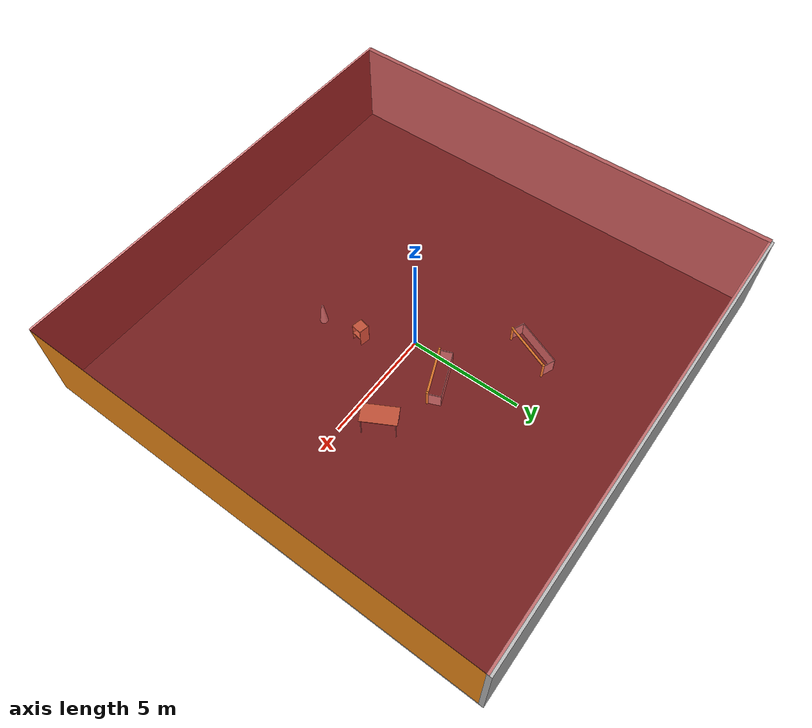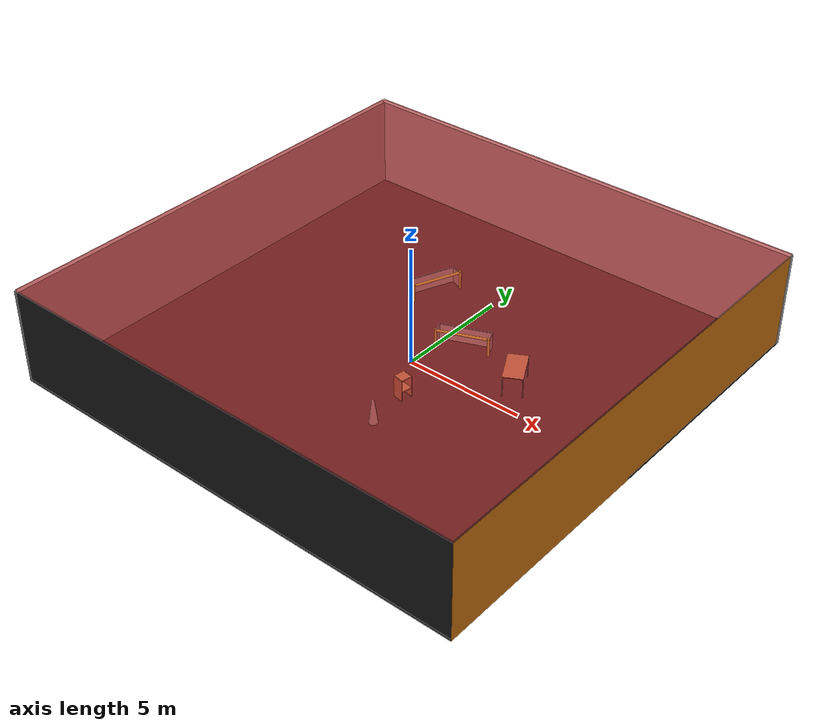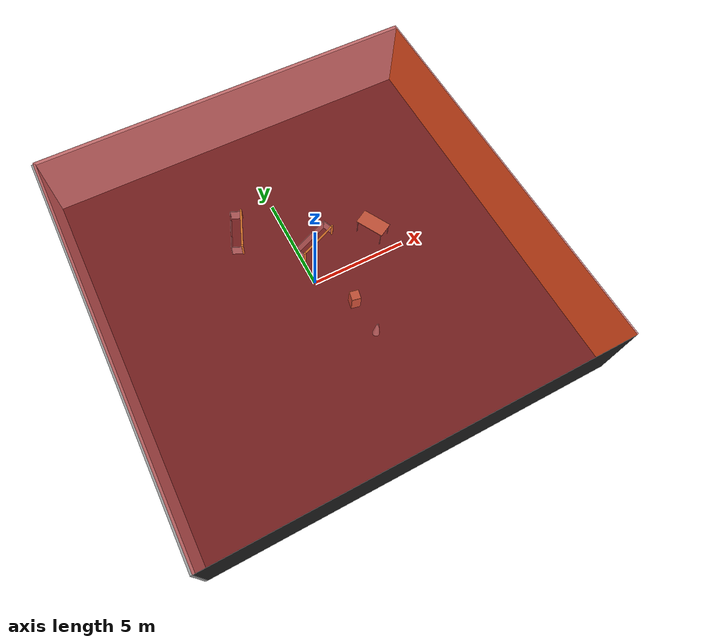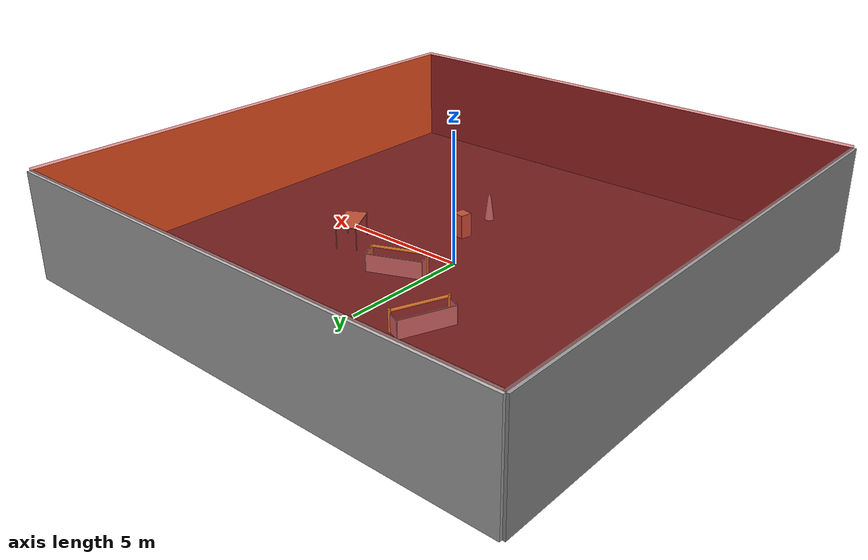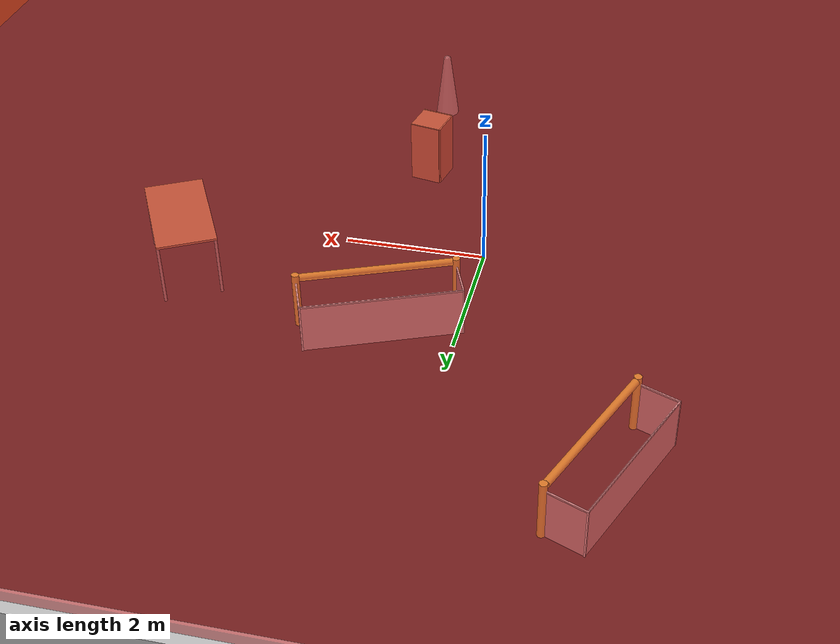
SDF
<sdf version="1.4">
 <world name="default">
  <physics type="ode">
   <max_step_size>0.001</max_step_size>
   <real_time_factor>1</real_time_factor>
   <real_time_update_rate>1000</real_time_update_rate>
   <gravity>0 0 -9.8</gravity>
  </physics>
  <scene><ambient>0.4 0.4 0.4 1</ambient><background>0.7 0.7 0.7 1</background><shadows>1</shadows></scene>
  <model name="Surrounding">
   <static>1</static>
   <link name="Ceiling">
    <collision name="Ceiling_Collision"><geometry><box><size>20 20 0.1</size></box></geometry></collision>
    <visual name="Ceiling_Visual">
     <geometry><box><size>20 20 0.1</size></box></geometry>
     <material>
      <script><uri>file://media/materials/scripts/gazebo.material</uri><name>Gazebo/RedTransparent</name></script>
     </material>
    </visual>
    <pose>0 0 4.05 0 0 0</pose>
   </link>
   <link name="Wall_South">
    <collision name="Wall_South_Collision">
     <geometry><box><size>20 0 4</size></box></geometry>
     <pose>0 0 2 0 -0 0</pose>
    </collision>
    <visual name="Wall_South_Visual">
     <pose>0 0 2 0 -0 0</pose>
     <geometry><box><size>20 0 4</size></box></geometry>
     <material>
      <script><uri>file://media/materials/scripts/gazebo.material</uri><name>Gazebo/FlatBlack</name></script>
     </material>
    </visual>
    <velocity_decay><linear>0</linear><angular>0</angular></velocity_decay>
    <pose>0 -10 0 0 -0 0</pose>
   </link>
   <link name="Wall_East">
    <collision name="Wall_21_Collision">
     <geometry><box><size>20 0 4</size></box></geometry>
     <pose>0 0 2 0 -0 0</pose>
    </collision>
    <visual name="Wall_21_Visual">
     <pose>0 0 2 0 -0 0</pose>
     <geometry><box><size>20 0 4</size></box></geometry>
     <material>
      <script><uri>file://media/materials/scripts/gazebo.material</uri><name>Gazebo/Orange</name></script>
     </material>
    </visual>
    <velocity_decay><linear>0</linear><angular>0</angular></velocity_decay>
    <pose>10 0 0 0 -0 1.5708</pose>
   </link>
   <link name="Wall_North">
    <collision name="Wall_22_Collision">
     <geometry><box><size>20 0.2 4</size></box></geometry>
     <pose>0 0 2 0 -0 0</pose>
    </collision>
    <visual name="Wall_22_Visual">
     <pose>0 0 2 0 -0 0</pose>
     <geometry><box><size>20 0.2 4</size></box></geometry>
     <material>
      <script><uri>file://media/materials/scripts/gazebo.material</uri><name>Gazebo/LightOn</name></script>
     </material>
    </visual>
    <velocity_decay><linear>0</linear><angular>0</angular></velocity_decay>
    <pose>0 10 0 0 -0 0</pose>
   </link>
   <link name="Wall_West">
    <collision name="Wall_23_Collision">
     <geometry><box><size>20 0.2 4</size></box></geometry>
     <pose>0 0 2 0 -0 0</pose>
    </collision>
    <visual name="Wall_23_Visual">
     <pose>0 0 2 0 -0 0</pose>
     <geometry><box><size>20 0.2 4</size></box></geometry>
     <material>
      <script><uri>file://media/materials/scripts/gazebo.material</uri><name>Gazebo/Grey</name></script>
     </material>
    </visual>
    <velocity_decay><linear>0</linear><angular>0</angular></velocity_decay>
    <pose>-10 0 0 0 0 -1.5708</pose>
   </link>
   <link name="Ground_link">
    <collision name="collision">
     <pose>0 0 .05 0 -0 0</pose>
     <geometry><box><size>20 20 0.1</size></box></geometry>
    </collision>
    <visual name="visual">
     <pose>0 0 .05 0 -0 0</pose>
     <geometry><box><size>20 20 0.1</size></box></geometry>
     <material>
      <script><uri>file://media/materials/scripts/gazebo.material</uri><name>Gazebo/FlatBlack</name></script>
     </material>
    </visual>
   </link>
   <static>1</static>
  </model>
  <spherical_coordinates>
   <surface_model>EARTH_WGS84</surface_model>
   <latitude_deg>0</latitude_deg>
   <longitude_deg>0</longitude_deg>
   <elevation>0</elevation>
   <heading_deg>0</heading_deg>
  </spherical_coordinates>
  <light name="lightball_0" type="diffuse">
   <diffuse>0.8 0.8 0.8 1</diffuse>
   <specular>0.2 0.2 0.2 1</specular>
   <attenuation>
    <range>100</range>
    <constant>0.7</constant>
    <linear>0.01</linear>
    <quadratic>0.001</quadratic>
   </attenuation>
   <direction>-0.5 0.1 -0.9</direction>
   <pose>-4.99779504625 7.48784262739 1.88570936649 0 0 0</pose>
  </light>
  <light name="lightball_1" type="diffuse">
   <diffuse>0.8 0.8 0.8 1</diffuse>
   <specular>0.2 0.2 0.2 1</specular>
   <attenuation>
    <range>100</range>
    <constant>0.7</constant>
    <linear>0.01</linear>
    <quadratic>0.001</quadratic>
   </attenuation>
   <direction>-0.5 0.1 -0.9</direction>
   <pose>6.17389298153 3.52630313546 2.01788551384 0 0 0</pose>
  </light>
  <light name="lightball_2" type="diffuse">
   <diffuse>0.8 0.8 0.8 1</diffuse>
   <specular>0.2 0.2 0.2 1</specular>
   <attenuation>
    <range>100</range>
    <constant>0.7</constant>
    <linear>0.01</linear>
    <quadratic>0.001</quadratic>
   </attenuation>
   <direction>-0.5 0.1 -0.9</direction>
   <pose>-9.89718216354 -6.40172477364 2.10930574053 0 0 0</pose>
  </light>
  <light name="lightball_3" type="diffuse">
   <diffuse>0.8 0.8 0.8 1</diffuse>
   <specular>0.2 0.2 0.2 1</specular>
   <attenuation>
    <range>100</range>
    <constant>0.7</constant>
    <linear>0.01</linear>
    <quadratic>0.001</quadratic>
   </attenuation>
   <direction>-0.5 0.1 -0.9</direction>
   <pose>7.37877650442 -7.04084705974 2.35800507633 0 0 0</pose>
  </light>
  <light name="lightball_4" type="diffuse">
   <diffuse>0.8 0.8 0.8 1</diffuse>
   <specular>0.2 0.2 0.2 1</specular>
   <attenuation>
    <range>100</range>
    <constant>0.7</constant>
    <linear>0.01</linear>
    <quadratic>0.001</quadratic>
   </attenuation>
   <direction>-0.5 0.1 -0.9</direction>
   <pose>6.05075748506 -8.29954776282 2.38574265231 0 0 0</pose>
  </light>
  <light name="lightball_5" type="diffuse">
   <diffuse>0.8 0.8 0.8 1</diffuse>
   <specular>0.2 0.2 0.2 1</specular>
   <attenuation>
    <range>100</range>
    <constant>0.7</constant>
    <linear>0.01</linear>
    <quadratic>0.001</quadratic>
   </attenuation>
   <direction>-0.5 0.1 -0.9</direction>
   <pose>-4.78667662705 7.90121882373 0.975700074771 0 0 0</pose>
  </light>
  <light name="lightball_6" type="diffuse">
   <diffuse>0.8 0.8 0.8 1</diffuse>
   <specular>0.2 0.2 0.2 1</specular>
   <attenuation>
    <range>100</range>
    <constant>0.7</constant>
    <linear>0.01</linear>
    <quadratic>0.001</quadratic>
   </attenuation>
   <direction>-0.5 0.1 -0.9</direction>
   <pose>-2.22438152075 4.5000850476 2.27505097144 0 0 0</pose>
  </light>
  <light name="lightball_7" type="diffuse">
   <diffuse>0.8 0.8 0.8 1</diffuse>
   <specular>0.2 0.2 0.2 1</specular>
   <attenuation>
    <range>100</range>
    <constant>0.7</constant>
    <linear>0.01</linear>
    <quadratic>0.001</quadratic>
   </attenuation>
   <direction>-0.5 0.1 -0.9</direction>
   <pose>4.14568967814 0.890118854485 0.583197943718 0 0 0</pose>
  </light>
  <light name="lightball_8" type="diffuse">
   <diffuse>0.8 0.8 0.8 1</diffuse>
   <specular>0.2 0.2 0.2 1</specular>
   <attenuation>
    <range>100</range>
    <constant>0.7</constant>
    <linear>0.01</linear>
    <quadratic>0.001</quadratic>
   </attenuation>
   <direction>-0.5 0.1 -0.9</direction>
   <pose>-3.93837814232 -0.940129973323 2.96879860049 0 0 0</pose>
  </light>
  <light name="lightball_9" type="diffuse">
   <diffuse>0.8 0.8 0.8 1</diffuse>
   <specular>0.2 0.2 0.2 1</specular>
   <attenuation>
    <range>100</range>
    <constant>0.7</constant>
    <linear>0.01</linear>
    <quadratic>0.001</quadratic>
   </attenuation>
   <direction>-0.5 0.1 -0.9</direction>
   <pose>2.55165247078 -6.76812958663 1.4353175909 0 0 0</pose>
  </light>
  <light name="lightball_10" type="diffuse">
   <diffuse>0.8 0.8 0.8 1</diffuse>
   <specular>0.2 0.2 0.2 1</specular>
   <attenuation>
    <range>100</range>
    <constant>0.7</constant>
    <linear>0.01</linear>
    <quadratic>0.001</quadratic>
   </attenuation>
   <direction>-0.5 0.1 -0.9</direction>
   <pose>-7.280337269 8.25338118115 1.73266988528 0 0 0</pose>
  </light>
  <light name="lightball_11" type="diffuse">
   <diffuse>0.8 0.8 0.8 1</diffuse>
   <specular>0.2 0.2 0.2 1</specular>
   <attenuation>
    <range>100</range>
    <constant>0.7</constant>
    <linear>0.01</linear>
    <quadratic>0.001</quadratic>
   </attenuation>
   <direction>-0.5 0.1 -0.9</direction>
   <pose>-7.56564827288 -5.44032089684 1.22983082251 0 0 0</pose>
  </light>
  <include>
   <uri>model://robocup_3Dsim_goal</uri>
   <pose>-2.08516629358 4.09830286947 0 0 0 2.75638266541</pose>
  </include>
  <include>
   <uri>model://construction_cone</uri>
   <pose>1.378769773 -3.73302520208 0 0 0 1.29127783632</pose>
  </include>
  <include><uri>model://cabinet</uri><pose>1.19958751642 -1.88327479915 0 0 0 2.94837252189</pose></include>
  <include>
   <uri>model://robocup_3Dsim_goal</uri>
   <pose>1.07972784531 1.69934889092 0 0 0 1.96031969036</pose>
  </include>
  <include><uri>model://table</uri><pose>3.94999127278 1.23449836859 0 0 0 2.06851336964</pose></include>
 </world>
</sdf>

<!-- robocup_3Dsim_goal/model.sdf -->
<sdf version="1.5">
  <model name="robocup_3d_goal">
    <static>true</static>
    <link name="left_post">
      <pose>0 1.05 0.45 0 0 0</pose>
      <collision name="collision">
        <geometry>
          <cylinder>
            <radius>0.05</radius>
            <length>0.9</length>
          </cylinder>
        </geometry>
      </collision>
      <visual name="visual">
        <geometry>
          <cylinder>
            <radius>0.05</radius>
            <length>0.9</length>
          </cylinder>
        </geometry>
        <material>
          <script>
            <uri>file://media/materials/scripts/gazebo.material</uri>
            <name>Gazebo/ZincYellow</name>
          </script>
        </material>
      </visual>
    </link>
    <link name="left_support_horiz_lower">
      <pose>0.30 1.05 0.01 0 0 0</pose>
      <collision name="collision">
        <geometry>
          <box>
            <size>0.50 0.02 0.02</size>
          </box>
        </geometry>
      </collision>
      <visual name="visual">
        <geometry>
          <box>
            <size>0.50 0.02 0.02</size>
          </box>
        </geometry>
        <material>
          <script>
            <uri>file://media/materials/scripts/gazebo.material</uri>
            <name>Gazebo/White</name>
          </script>
        </material>
      </visual>
    </link>
    <link name="left_support_horiz_upper">
      <pose>0.30 1.05 0.79 0 0 0</pose>
      <collision name="collision">
        <geometry>
          <box>
            <size>0.50 0.02 0.02</size>
          </box>
        </geometry>
      </collision>
      <visual name="visual">
        <geometry>
          <box>
            <size>0.50 0.02 0.02</size>
          </box>
        </geometry>
        <material>
          <script>
            <uri>file://media/materials/scripts/gazebo.material</uri>
            <name>Gazebo/White</name>
          </script>
        </material>
      </visual>
    </link>
    <link name="left_support_vertical">
      <pose>0.56 1.05 0.4 0 1.5708 0</pose>
      <collision name="collision">
        <geometry>
          <box>
            <size>0.80 0.02 0.02</size>
          </box>
        </geometry>
      </collision>
      <visual name="visual">
        <geometry>
          <box>
            <size>0.80 0.02 0.02</size>
          </box>
        </geometry>
        <material>
          <script>
            <uri>file://media/materials/scripts/gazebo.material</uri>
            <name>Gazebo/White</name>
          </script>
        </material>
      </visual>
    </link>
    <link name="right_support_horiz_lower">
      <pose>0.30 -1.05 0.01 0 0 0</pose>
      <collision name="collision">
        <geometry>
          <box>
            <size>0.50 0.02 0.02</size>
          </box>
        </geometry>
      </collision>
      <visual name="visual">
        <geometry>
          <box>
            <size>0.50 0.02 0.02</size>
          </box>
        </geometry>
        <material>
          <script>
            <uri>file://media/materials/scripts/gazebo.material</uri>
            <name>Gazebo/White</name>
          </script>
        </material>
      </visual>
    </link>
    <link name="right_support_horiz_upper">
      <pose>0.30 -1.05 0.79 0 0 0</pose>
      <collision name="collision">
        <geometry>
          <box>
            <size>0.50 0.02 0.02</size>
          </box>
        </geometry>
      </collision>
      <visual name="visual">
        <geometry>
          <box>
            <size>0.50 0.02 0.02</size>
          </box>
        </geometry>
        <material>
          <script>
            <uri>file://media/materials/scripts/gazebo.material</uri>
            <name>Gazebo/White</name>
          </script>
        </material>
      </visual>
    </link>
    <link name="right_support_vertical">
      <pose>0.56 -1.05 0.4 0 1.5708 0</pose>
      <collision name="collision">
        <geometry>
          <box>
            <size>0.80 0.02 0.02</size>
          </box>
        </geometry>
      </collision>
      <visual name="visual">
        <geometry>
          <box>
            <size>0.80 0.02 0.02</size>
          </box>
        </geometry>
        <material>
          <script>
            <uri>file://media/materials/scripts/gazebo.material</uri>
            <name>Gazebo/White</name>
          </script>
        </material>
      </visual>
    </link>
    <link name="center_support_horiz_lower">
      <pose>0.56 0 0.01 0 1.5708 0</pose>
      <collision name="collision">
        <geometry>
          <box>
            <size>0.02 2.08 0.02</size>
          </box>
        </geometry>
      </collision>
      <visual name="visual">
        <geometry>
          <box>
            <size>0.02 2.08 0.02</size>
          </box>
        </geometry>
        <material>
          <script>
            <uri>file://media/materials/scripts/gazebo.material</uri>
            <name>Gazebo/White</name>
          </script>
        </material>
      </visual>
    </link>
    <link name="center_support_horiz_upper">
      <pose>0.56 0 0.79 0 1.5708 0</pose>
      <collision name="collision">
        <geometry>
          <box>
            <size>0.02 2.08 0.02</size>
          </box>
        </geometry>
      </collision>
      <visual name="visual">
        <geometry>
          <box>
            <size>0.02 2.08 0.02</size>
          </box>
        </geometry>
        <material>
          <script>
            <uri>file://media/materials/scripts/gazebo.material</uri>
            <name>Gazebo/White</name>
          </script>
        </material>
      </visual>
    </link>
    <link name="right_post">
      <pose>0 -1.05 0.45 0 0 0</pose>
      <collision name="collision">
        <geometry>
          <cylinder>
            <radius>0.05</radius>
            <length>0.9</length>
          </cylinder>
        </geometry>
      </collision>
      <visual name="visual">
        <geometry>
          <cylinder>
            <radius>0.05</radius>
            <length>0.9</length>
          </cylinder>
        </geometry>
        <material>
          <script>
            <uri>file://media/materials/scripts/gazebo.material</uri>
            <name>Gazebo/ZincYellow</name>
          </script>
        </material>
      </visual>
    </link>
    <link name="crossbar">
      <pose>0 0 0.85 1.57 1.57 0</pose>
      <collision name="collision">
        <geometry>
          <cylinder>
            <radius>0.05</radius>
            <length>2.0</length>
          </cylinder>
        </geometry>
      </collision>
      <visual name="visual">
        <geometry>
          <cylinder>
            <radius>0.05</radius>
            <length>2.0</length>
          </cylinder>
        </geometry>
        <material>
          <script>
            <uri>file://media/materials/scripts/gazebo.material</uri>
            <name>Gazebo/ZincYellow</name>
          </script>
        </material>
      </visual>
    </link>
    <link name="center_net">
      <pose>0.56 0 0.40 0 0 0</pose>
      <collision name="collision">
        <geometry>
          <box>
            <size>0.01 2.1 0.80</size>
          </box>
        </geometry>
      </collision>
      <visual name="visual">
        <geometry>
          <box>
            <size>0.01 2.1 0.80</size>
          </box>
        </geometry>
        <material>
          <script>
            <uri>model://../model_source/models/robocup09_spl_field/materials/scripts/</uri>
            <uri>model://../model_source/models/robocup09_spl_field/materials/textures/</uri>
            <name>RoboCup/Net</name>
          </script>
        </material>
      </visual>
    </link>
    <link name="left_net">
      <pose>0.30 1.05 0.40 0 0 0</pose>
      <collision name="collision">
        <geometry>
          <box>
            <size>0.50 0.01 0.76</size>
          </box>
        </geometry>
      </collision>
      <visual name="visual">
        <geometry>
          <box>
            <size>0.50 0.01 0.76</size>
          </box>
        </geometry>
        <material>
          <script>
            <uri>model://../model_source/models/robocup09_spl_field/materials/scripts/</uri>
            <uri>model://../model_source/models/robocup09_spl_field/materials/textures/</uri>
            <name>RoboCup/Net</name>
          </script>
        </material>
      </visual>
    </link>
    <link name="right_net">
      <pose>0.30 -1.05 0.40 0 0 0</pose>
      <collision name="collision">
        <geometry>
          <box>
            <size>0.50 0.01 0.76</size>
          </box>
        </geometry>
      </collision>
      <visual name="visual">
        <geometry>
          <box>
            <size>0.50 0.01 0.76</size>
          </box>
        </geometry>
        <material>
          <script>
            <uri>model://../model_source/models/robocup09_spl_field/materials/scripts/</uri>
            <uri>model://../model_source/models/robocup09_spl_field/materials/textures/</uri>
            <name>RoboCup/Net</name>
          </script>
        </material>
      </visual>
    </link>
  </model>
</sdf>

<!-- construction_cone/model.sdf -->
<sdf version="1.5">
  <model name="Construction Cone">
    <link name="link">
      <collision name="collision">
        <geometry>
          <mesh>
            <scale>10 10 10</scale>
            <uri>file://isr-testbed/construction_cone/meshes/construction_cone.dae</uri>
          </mesh>
        </geometry>
      </collision>
      <visual name="visual">
        <geometry>
          <mesh>
            <scale>10 10 10</scale>
            <uri>file://isr-testbed/construction_cone/meshes/construction_cone.dae</uri>
          </mesh>
        </geometry>
      </visual>
    </link>
  </model>
</sdf>

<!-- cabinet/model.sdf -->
<sdf version="1.5">
  <model name="cabinet">
    <static>true</static>
    <link name="cabinet_bottom_plate">
      <inertial>
        <pose>0 0 -1 0 0 0</pose>
        <inertia>
          <ixx>2.050000</ixx>
          <ixy>0</ixy>
          <ixz>0</ixz>
          <iyy>2.050000</iyy>
          <iyz>0</iyz>
          <izz>2.050000</izz>
        </inertia>
        <mass>25.000000</mass>
      </inertial>
      <collision name="cabinet_bottom_plate_geom">
        <pose>0 0 0.010000 0 0 0</pose>
        <geometry>
          <box>
            <size>0.450000 0.450000 0.020000</size>
          </box>
        </geometry>
      </collision>
      <visual name="cabinet_bottom_plate_geom_visual">
        <pose>0 0 0.010000 0 0 0</pose>
        <geometry>
          <box>
            <size>0.450000 0.450000 0.020000</size>
          </box>
        </geometry>
        <material>
          <script>
            <uri>model://media/materials/scripts/gazebo.material</uri>
            <name>Gazebo/Wood</name>
          </script>
        </material>
      </visual>
      <collision name="cabinet_bottom_plate_geom_cabinet_back_plate">
        <pose>0.235000 0 0.510000 0 0 0</pose>
        <geometry>
          <box>
            <size>0.020000 0.450000 1.020000</size>
          </box>
        </geometry>
      </collision>
      <visual name="cabinet_bottom_plate_geom_cabinet_back_plate_visual">
        <pose>0.235000 0 0.510000 0 0 0</pose>
        <geometry>
          <box>
            <size>0.020000 0.450000 1.020000</size>
          </box>
        </geometry>
        <material>
          <script>
            <uri>model://media/materials/scripts/gazebo.material</uri>
            <name>Gazebo/Wood</name>
          </script>
        </material>
      </visual>
      <collision name="cabinet_bottom_plate_geom_cabinet_left_plate">
        <pose>0 0.235000 0.510000 0 0 0</pose>
        <geometry>
          <box>
            <size>0.450000 0.020000 1.020000</size>
          </box>
        </geometry>
      </collision>
      <visual name="cabinet_bottom_plate_geom_cabinet_left_plate_visual">
        <pose>0 0.235000 0.510000 0 0 0</pose>
        <geometry>
          <box>
            <size>0.450000 0.020000 1.020000</size>
          </box>
        </geometry>
        <material>
          <script>
            <uri>model://media/materials/scripts/gazebo.material</uri>
            <name>Gazebo/Wood</name>
          </script>
        </material>
      </visual>
      <collision name="cabinet_bottom_plate_geom_cabinet_middle_plate">
        <pose>0 0 0.510000 0 0 0</pose>
        <geometry>
          <box>
            <size>0.450000 0.450000 0.020000</size>
          </box>
        </geometry>
      </collision>
      <visual name="cabinet_bottom_plate_geom_cabinet_middle_plate_visual">
        <pose>0 0 0.510000 0 0 0</pose>
        <geometry>
          <box>
            <size>0.450000 0.450000 0.020000</size>
          </box>
        </geometry>
        <material>
          <script>
            <uri>model://media/materials/scripts/gazebo.material</uri>
            <name>Gazebo/Wood</name>
          </script>
        </material>
      </visual>
      <collision name="cabinet_bottom_plate_geom_cabinet_right_plate">
        <pose>0 -0.235000 0.510000 0 0 0</pose>
        <geometry>
          <box>
            <size>0.450000 0.020000 1.020000</size>
          </box>
        </geometry>
      </collision>
      <visual name="cabinet_bottom_plate_geom_cabinet_right_plate_visual">
        <pose>0 -0.235000 0.510000 0 0 0</pose>
        <geometry>
          <box>
            <size>0.450000 0.020000 1.020000</size>
          </box>
        </geometry>
        <material>
          <script>
            <uri>model://media/materials/scripts/gazebo.material</uri>
            <name>Gazebo/Wood</name>
          </script>
        </material>
      </visual>
      <collision name="cabinet_bottom_plate_geom_cabinet_top_plate">
        <pose>0 0 1.010000 0 0 0</pose>
        <geometry>
          <box>
            <size>0.450000 0.450000 0.020000</size>
          </box>
        </geometry>
      </collision>
      <visual name="cabinet_bottom_plate_geom_cabinet_top_plate_visual">
        <pose>0 0 1.010000 0 0 0</pose>
        <geometry>
          <box>
            <size>0.450000 0.450000 0.020000</size>
          </box>
        </geometry>
        <material>
          <script>
            <uri>model://media/materials/scripts/gazebo.material</uri>
            <name>Gazebo/Wood</name>
          </script>
        </material>
      </visual>
    </link>
  </model>
</sdf>

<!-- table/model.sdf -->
<sdf version="1.5">
  <model name="table">
    <static>true</static>
    <link name="link">
      <collision name="surface">
        <pose>0 0 1.0 0 0 0</pose>
        <geometry>
          <box>
            <size>1.5 0.8 0.03</size>
          </box>
        </geometry>
        <surface>
          <friction>
            <ode>
              <mu>0.6</mu>
              <mu2>0.6</mu2>
            </ode>
          </friction>
        </surface>
      </collision>
      <visual name="visual1">
        <pose>0 0 1.0 0 0 0</pose>
        <geometry>
          <box>
            <size>1.5 0.8 0.03</size>
          </box>
        </geometry>
        <material>
          <script>
            <uri>model://media/materials/scripts/gazebo.material</uri>
            <name>Gazebo/Wood</name>
          </script>
        </material>
      </visual>
      <collision name="front_left_leg">
        <pose>0.68 0.38 0.5 0 0 0</pose>
        <geometry>
          <cylinder>
            <radius>0.02</radius>
            <length>1.0</length>
          </cylinder>
        </geometry>
      </collision>
      <visual name="front_left_leg">
        <pose>0.68 0.38 0.5 0 0 0</pose>
        <geometry>
          <cylinder>
            <radius>0.02</radius>
            <length>1.0</length>
          </cylinder>
        </geometry>
        <material>
          <script>
            <uri>model://media/materials/scripts/gazebo.material</uri>
            <name>Gazebo/Grey</name>
          </script>
        </material>
      </visual>
      <collision name="front_right_leg">
        <pose>0.68 -0.38 0.5 0 0 0</pose>
        <geometry>
          <cylinder>
            <radius>0.02</radius>
            <length>1.0</length>
          </cylinder>
        </geometry>
      </collision>
      <visual name="front_right_leg">
        <pose>0.68 -0.38 0.5 0 0 0</pose>
        <geometry>
          <cylinder>
            <radius>0.02</radius>
            <length>1.0</length>
          </cylinder>
        </geometry>
        <material>
          <script>
            <uri>model://media/materials/scripts/gazebo.material</uri>
            <name>Gazebo/Grey</name>
          </script>
        </material>
      </visual>
      <collision name="back_right_leg">
        <pose>-0.68 -0.38 0.5 0 0 0</pose>
        <geometry>
          <cylinder>
            <radius>0.02</radius>
            <length>1.0</length>
          </cylinder>
        </geometry>
      </collision>
      <visual name="back_right_leg">
        <pose>-0.68 -0.38 0.5 0 0 0</pose>
        <geometry>
          <cylinder>
            <radius>0.02</radius>
            <length>1.0</length>
          </cylinder>
        </geometry>
        <material>
          <script>
            <uri>model://media/materials/scripts/gazebo.material</uri>
            <name>Gazebo/Grey</name>
          </script>
        </material>
      </visual>
      <collision name="back_left_leg">
        <pose>-0.68 0.38 0.5 0 0 0</pose>
        <geometry>
          <cylinder>
            <radius>0.02</radius>
            <length>1.0</length>
          </cylinder>
        </geometry>
      </collision>
      <visual name="back_left_leg">
        <pose>-0.68 0.38 0.5 0 0 0</pose>
        <geometry>
          <cylinder>
            <radius>0.02</radius>
            <length>1.0</length>
          </cylinder>
        </geometry>
        <material>
          <script>
            <uri>model://media/materials/scripts/gazebo.material</uri>
            <name>Gazebo/Grey</name>
          </script>
        </material>
      </visual>
    </link>
  </model>
</sdf>
